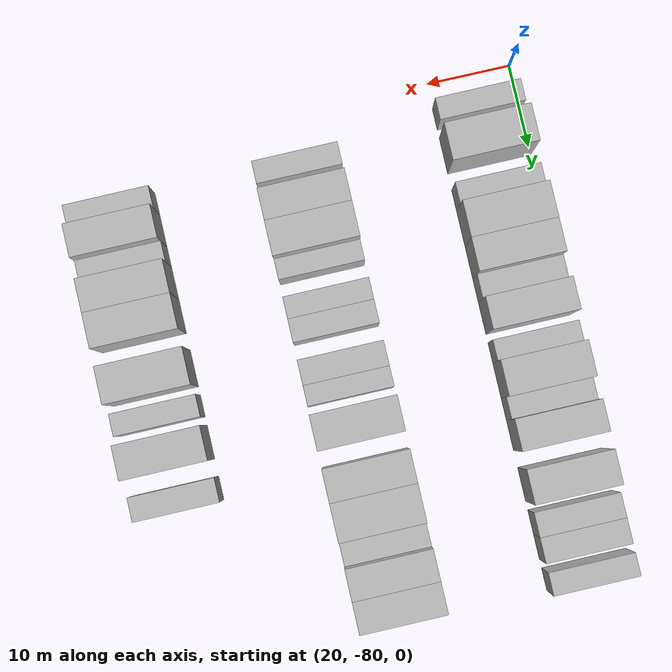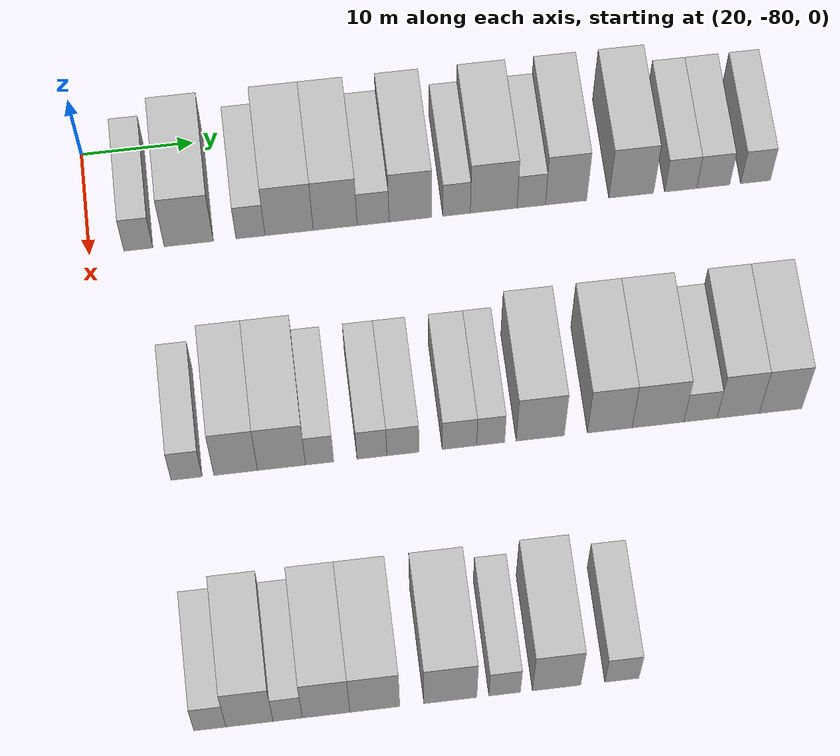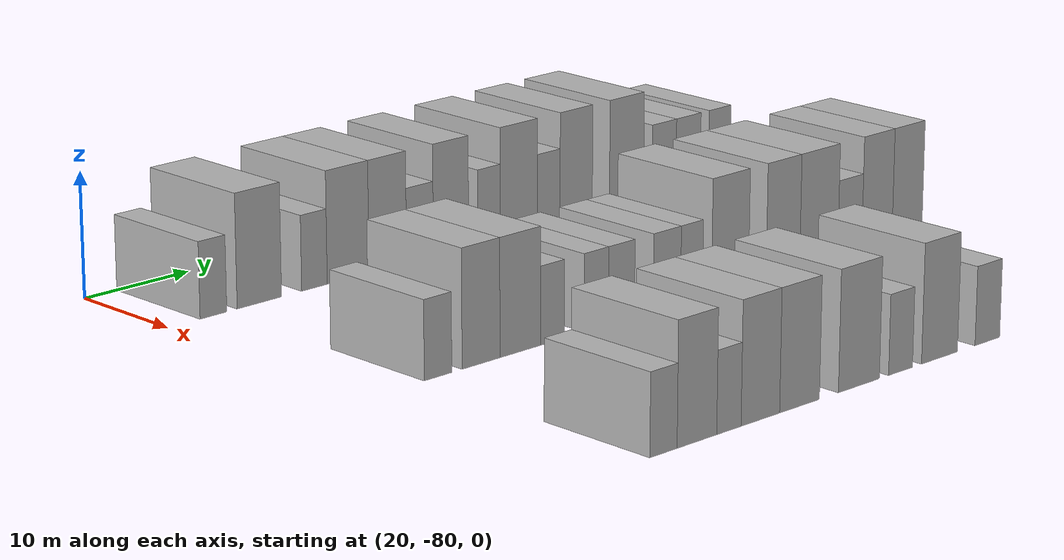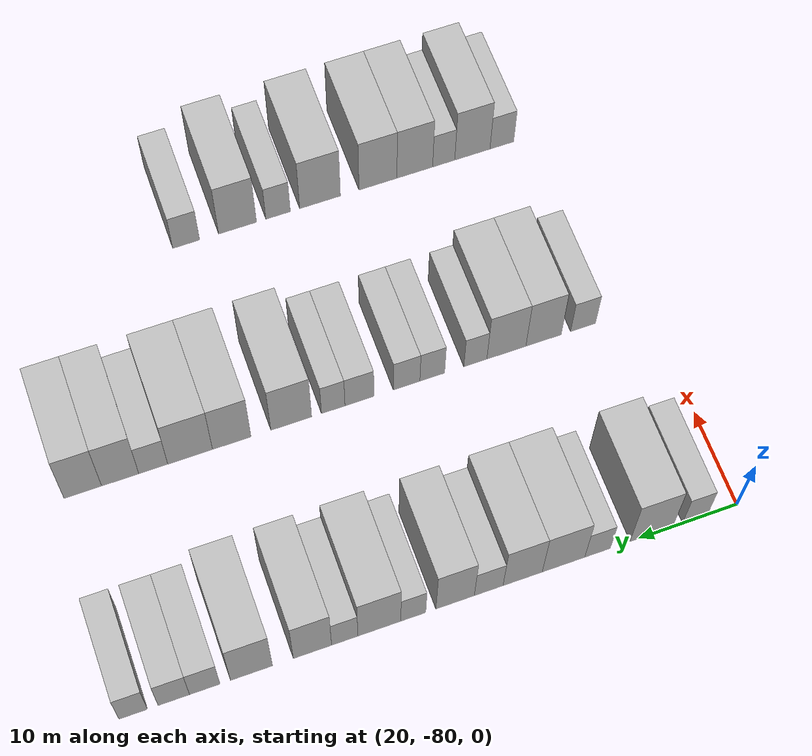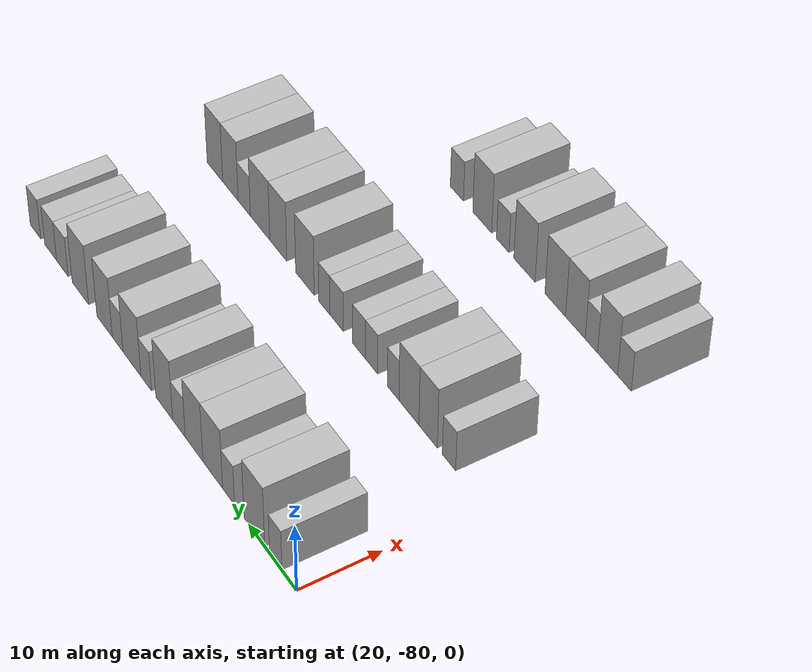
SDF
<sdf version="1.6">
 <world name="default">
  <model name="building_69">
   <static>1</static>
   <pose>25.0000 -75.6935 0 0.000000 0.000000 0.000000</pose>
   <link name="link">
    <pose>0 0 3.00 0 0 0</pose>
    <collision name="collision"><geometry><box><size>10.0000 2.5548 6.0000</size></box></geometry></collision>
    <visual name="visual">
     <cast_shadows>0</cast_shadows>
     <geometry><box><size>10.0000 2.5548 6.0000</size></box></geometry>
     <material>
      <script>
       <uri>model://HANNAS_wall/materials/scripts</uri>
       <uri>model://HANNAS_wall/materials/textures</uri>
       <name>vrc/HANNAS_wall</name>
      </script>
     </material>
    </visual>
   </link>
  </model>
  <model name="building_70">
   <static>1</static>
   <pose>25.0000 -71.2420 0 0.000000 0.000000 0.000000</pose>
   <link name="link">
    <pose>0 0 4.50 0 0 0</pose>
    <collision name="collision"><geometry><box><size>10.0000 4.3483 9.0000</size></box></geometry></collision>
    <visual name="visual">
     <cast_shadows>0</cast_shadows>
     <geometry><box><size>10.0000 4.3483 9.0000</size></box></geometry>
     <material>
      <script>
       <uri>model://HANNAS_wall/materials/scripts</uri>
       <uri>model://HANNAS_wall/materials/textures</uri>
       <name>vrc/HANNAS_wall</name>
      </script>
     </material>
    </visual>
   </link>
  </model>
  <model name="building_71">
   <static>1</static>
   <pose>25.0000 -65.7825 0 0.000000 0.000000 0.000000</pose>
   <link name="link">
    <pose>0 0 3.00 0 0 0</pose>
    <collision name="collision"><geometry><box><size>10.0000 2.5708 6.0000</size></box></geometry></collision>
    <visual name="visual">
     <cast_shadows>0</cast_shadows>
     <geometry><box><size>10.0000 2.5708 6.0000</size></box></geometry>
     <material>
      <script>
       <uri>model://HANNAS_wall/materials/scripts</uri>
       <uri>model://HANNAS_wall/materials/textures</uri>
       <name>vrc/HANNAS_wall</name>
      </script>
     </material>
    </visual>
   </link>
  </model>
  <model name="building_72">
   <static>1</static>
   <pose>25.0000 -62.3604 0 0.000000 0.000000 0.000000</pose>
   <link name="link">
    <pose>0 0 4.50 0 0 0</pose>
    <collision name="collision"><geometry><box><size>10.0000 4.2733 9.0000</size></box></geometry></collision>
    <visual name="visual">
     <cast_shadows>0</cast_shadows>
     <geometry><box><size>10.0000 4.2733 9.0000</size></box></geometry>
     <material>
      <script>
       <uri>model://HANNAS_wall/materials/scripts</uri>
       <uri>model://HANNAS_wall/materials/textures</uri>
       <name>vrc/HANNAS_wall</name>
      </script>
     </material>
    </visual>
   </link>
  </model>
  <model name="building_73">
   <static>1</static>
   <pose>25.0000 -58.2709 0 0.000000 0.000000 0.000000</pose>
   <link name="link">
    <pose>0 0 4.50 0 0 0</pose>
    <collision name="collision"><geometry><box><size>10.0000 3.9057 9.0000</size></box></geometry></collision>
    <visual name="visual">
     <cast_shadows>0</cast_shadows>
     <geometry><box><size>10.0000 3.9057 9.0000</size></box></geometry>
     <material>
      <script>
       <uri>model://HANNAS_wall/materials/scripts</uri>
       <uri>model://HANNAS_wall/materials/textures</uri>
       <name>vrc/HANNAS_wall</name>
      </script>
     </material>
    </visual>
   </link>
  </model>
  <model name="building_74">
   <static>1</static>
   <pose>25.0000 -54.8946 0 0.000000 0.000000 0.000000</pose>
   <link name="link">
    <pose>0 0 3.00 0 0 0</pose>
    <collision name="collision"><geometry><box><size>10.0000 2.8469 6.0000</size></box></geometry></collision>
    <visual name="visual">
     <cast_shadows>0</cast_shadows>
     <geometry><box><size>10.0000 2.8469 6.0000</size></box></geometry>
     <material>
      <script>
       <uri>model://HANNAS_wall/materials/scripts</uri>
       <uri>model://HANNAS_wall/materials/textures</uri>
       <name>vrc/HANNAS_wall</name>
      </script>
     </material>
    </visual>
   </link>
  </model>
  <model name="building_75">
   <static>1</static>
   <pose>25.0000 -51.5770 0 0.000000 0.000000 0.000000</pose>
   <link name="link">
    <pose>0 0 4.50 0 0 0</pose>
    <collision name="collision"><geometry><box><size>10.0000 3.7884 9.0000</size></box></geometry></collision>
    <visual name="visual">
     <cast_shadows>0</cast_shadows>
     <geometry><box><size>10.0000 3.7884 9.0000</size></box></geometry>
     <material>
      <script>
       <uri>model://HANNAS_wall/materials/scripts</uri>
       <uri>model://HANNAS_wall/materials/textures</uri>
       <name>vrc/HANNAS_wall</name>
      </script>
     </material>
    </visual>
   </link>
  </model>
  <model name="building_76">
   <static>1</static>
   <pose>25.0000 -47.4578 0 0.000000 0.000000 0.000000</pose>
   <link name="link">
    <pose>0 0 3.00 0 0 0</pose>
    <collision name="collision"><geometry><box><size>10.0000 2.4500 6.0000</size></box></geometry></collision>
    <visual name="visual">
     <cast_shadows>0</cast_shadows>
     <geometry><box><size>10.0000 2.4500 6.0000</size></box></geometry>
     <material>
      <script>
       <uri>model://HANNAS_wall/materials/scripts</uri>
       <uri>model://HANNAS_wall/materials/textures</uri>
       <name>vrc/HANNAS_wall</name>
      </script>
     </material>
    </visual>
   </link>
  </model>
  <model name="building_77">
   <static>1</static>
   <pose>25.0000 -44.1462 0 0.000000 0.000000 0.000000</pose>
   <link name="link">
    <pose>0 0 4.50 0 0 0</pose>
    <collision name="collision"><geometry><box><size>10.0000 4.1734 9.0000</size></box></geometry></collision>
    <visual name="visual">
     <cast_shadows>0</cast_shadows>
     <geometry><box><size>10.0000 4.1734 9.0000</size></box></geometry>
     <material>
      <script>
       <uri>model://HANNAS_wall/materials/scripts</uri>
       <uri>model://HANNAS_wall/materials/textures</uri>
       <name>vrc/HANNAS_wall</name>
      </script>
     </material>
    </visual>
   </link>
  </model>
  <model name="building_78">
   <static>1</static>
   <pose>25.0000 -40.7878 0 0.000000 0.000000 0.000000</pose>
   <link name="link">
    <pose>0 0 3.00 0 0 0</pose>
    <collision name="collision"><geometry><box><size>10.0000 2.5435 6.0000</size></box></geometry></collision>
    <visual name="visual">
     <cast_shadows>0</cast_shadows>
     <geometry><box><size>10.0000 2.5435 6.0000</size></box></geometry>
     <material>
      <script>
       <uri>model://HANNAS_wall/materials/scripts</uri>
       <uri>model://HANNAS_wall/materials/textures</uri>
       <name>vrc/HANNAS_wall</name>
      </script>
     </material>
    </visual>
   </link>
  </model>
  <model name="building_79">
   <static>1</static>
   <pose>25.0000 -37.6702 0 0.000000 0.000000 0.000000</pose>
   <link name="link">
    <pose>0 0 4.50 0 0 0</pose>
    <collision name="collision"><geometry><box><size>10.0000 3.6915 9.0000</size></box></geometry></collision>
    <visual name="visual">
     <cast_shadows>0</cast_shadows>
     <geometry><box><size>10.0000 3.6915 9.0000</size></box></geometry>
     <material>
      <script>
       <uri>model://HANNAS_wall/materials/scripts</uri>
       <uri>model://HANNAS_wall/materials/textures</uri>
       <name>vrc/HANNAS_wall</name>
      </script>
     </material>
    </visual>
   </link>
  </model>
  <model name="building_80">
   <static>1</static>
   <pose>25.0000 -31.8176 0 0.000000 0.000000 0.000000</pose>
   <link name="link">
    <pose>0 0 4.50 0 0 0</pose>
    <collision name="collision"><geometry><box><size>10.0000 4.0138 9.0000</size></box></geometry></collision>
    <visual name="visual">
     <cast_shadows>0</cast_shadows>
     <geometry><box><size>10.0000 4.0138 9.0000</size></box></geometry>
     <material>
      <script>
       <uri>model://HANNAS_wall/materials/scripts</uri>
       <uri>model://HANNAS_wall/materials/textures</uri>
       <name>vrc/HANNAS_wall</name>
      </script>
     </material>
    </visual>
   </link>
  </model>
  <model name="building_81">
   <static>1</static>
   <pose>25.0000 -27.3669 0 0.000000 0.000000 0.000000</pose>
   <link name="link">
    <pose>0 0 3.00 0 0 0</pose>
    <collision name="collision"><geometry><box><size>10.0000 2.8876 6.0000</size></box></geometry></collision>
    <visual name="visual">
     <cast_shadows>0</cast_shadows>
     <geometry><box><size>10.0000 2.8876 6.0000</size></box></geometry>
     <material>
      <script>
       <uri>model://HANNAS_wall/materials/scripts</uri>
       <uri>model://HANNAS_wall/materials/textures</uri>
       <name>vrc/HANNAS_wall</name>
      </script>
     </material>
    </visual>
   </link>
  </model>
  <model name="building_82">
   <static>1</static>
   <pose>25.0000 -24.4409 0 0.000000 0.000000 0.000000</pose>
   <link name="link">
    <pose>0 0 3.00 0 0 0</pose>
    <collision name="collision"><geometry><box><size>10.0000 2.9643 6.0000</size></box></geometry></collision>
    <visual name="visual">
     <cast_shadows>0</cast_shadows>
     <geometry><box><size>10.0000 2.9643 6.0000</size></box></geometry>
     <material>
      <script>
       <uri>model://HANNAS_wall/materials/scripts</uri>
       <uri>model://HANNAS_wall/materials/textures</uri>
       <name>vrc/HANNAS_wall</name>
      </script>
     </material>
    </visual>
   </link>
  </model>
  <model name="building_83">
   <static>1</static>
   <pose>25.0000 -20.6208 0 0.000000 0.000000 0.000000</pose>
   <link name="link">
    <pose>0 0 3.00 0 0 0</pose>
    <collision name="collision"><geometry><box><size>10.0000 2.6760 6.0000</size></box></geometry></collision>
    <visual name="visual">
     <cast_shadows>0</cast_shadows>
     <geometry><box><size>10.0000 2.6760 6.0000</size></box></geometry>
     <material>
      <script>
       <uri>model://HANNAS_wall/materials/scripts</uri>
       <uri>model://HANNAS_wall/materials/textures</uri>
       <name>vrc/HANNAS_wall</name>
      </script>
     </material>
    </visual>
   </link>
  </model>
  <model name="building_262">
   <static>1</static>
   <pose>47.0000 -73.2984 0 0.000000 0.000000 0.000000</pose>
   <link name="link">
    <pose>0 0 3.00 0 0 0</pose>
    <collision name="collision"><geometry><box><size>10.0000 2.6412 6.0000</size></box></geometry></collision>
    <visual name="visual">
     <cast_shadows>0</cast_shadows>
     <geometry><box><size>10.0000 2.6412 6.0000</size></box></geometry>
     <material>
      <script>
       <uri>model://HANNAS_wall/materials/scripts</uri>
       <uri>model://HANNAS_wall/materials/textures</uri>
       <name>vrc/HANNAS_wall</name>
      </script>
     </material>
    </visual>
   </link>
  </model>
  <model name="building_263">
   <static>1</static>
   <pose>47.0000 -69.1170 0 0.000000 0.000000 0.000000</pose>
   <link name="link">
    <pose>0 0 4.50 0 0 0</pose>
    <collision name="collision"><geometry><box><size>10.0000 3.7216 9.0000</size></box></geometry></collision>
    <visual name="visual">
     <cast_shadows>0</cast_shadows>
     <geometry><box><size>10.0000 3.7216 9.0000</size></box></geometry>
     <material>
      <script>
       <uri>model://HANNAS_wall/materials/scripts</uri>
       <uri>model://HANNAS_wall/materials/textures</uri>
       <name>vrc/HANNAS_wall</name>
      </script>
     </material>
    </visual>
   </link>
  </model>
  <model name="building_264">
   <static>1</static>
   <pose>47.0000 -65.2083 0 0.000000 0.000000 0.000000</pose>
   <link name="link">
    <pose>0 0 4.50 0 0 0</pose>
    <collision name="collision"><geometry><box><size>10.0000 4.0959 9.0000</size></box></geometry></collision>
    <visual name="visual">
     <cast_shadows>0</cast_shadows>
     <geometry><box><size>10.0000 4.0959 9.0000</size></box></geometry>
     <material>
      <script>
       <uri>model://HANNAS_wall/materials/scripts</uri>
       <uri>model://HANNAS_wall/materials/textures</uri>
       <name>vrc/HANNAS_wall</name>
      </script>
     </material>
    </visual>
   </link>
  </model>
  <model name="building_265">
   <static>1</static>
   <pose>47.0000 -61.9571 0 0.000000 0.000000 0.000000</pose>
   <link name="link">
    <pose>0 0 3.00 0 0 0</pose>
    <collision name="collision"><geometry><box><size>10.0000 2.4065 6.0000</size></box></geometry></collision>
    <visual name="visual">
     <cast_shadows>0</cast_shadows>
     <geometry><box><size>10.0000 2.4065 6.0000</size></box></geometry>
     <material>
      <script>
       <uri>model://HANNAS_wall/materials/scripts</uri>
       <uri>model://HANNAS_wall/materials/textures</uri>
       <name>vrc/HANNAS_wall</name>
      </script>
     </material>
    </visual>
   </link>
  </model>
  <model name="building_266">
   <static>1</static>
   <pose>47.0000 -57.4736 0 0.000000 0.000000 0.000000</pose>
   <link name="link">
    <pose>0 0 3.00 0 0 0</pose>
    <collision name="collision"><geometry><box><size>10.0000 2.5605 6.0000</size></box></geometry></collision>
    <visual name="visual">
     <cast_shadows>0</cast_shadows>
     <geometry><box><size>10.0000 2.5605 6.0000</size></box></geometry>
     <material>
      <script>
       <uri>model://HANNAS_wall/materials/scripts</uri>
       <uri>model://HANNAS_wall/materials/textures</uri>
       <name>vrc/HANNAS_wall</name>
      </script>
     </material>
    </visual>
   </link>
  </model>
  <model name="building_267">
   <static>1</static>
   <pose>47.0000 -54.8199 0 0.000000 0.000000 0.000000</pose>
   <link name="link">
    <pose>0 0 3.00 0 0 0</pose>
    <collision name="collision"><geometry><box><size>10.0000 2.7468 6.0000</size></box></geometry></collision>
    <visual name="visual">
     <cast_shadows>0</cast_shadows>
     <geometry><box><size>10.0000 2.7468 6.0000</size></box></geometry>
     <material>
      <script>
       <uri>model://HANNAS_wall/materials/scripts</uri>
       <uri>model://HANNAS_wall/materials/textures</uri>
       <name>vrc/HANNAS_wall</name>
      </script>
     </material>
    </visual>
   </link>
  </model>
  <model name="building_268">
   <static>1</static>
   <pose>47.0000 -49.9681 0 0.000000 0.000000 0.000000</pose>
   <link name="link">
    <pose>0 0 3.00 0 0 0</pose>
    <collision name="collision"><geometry><box><size>10.0000 2.9569 6.0000</size></box></geometry></collision>
    <visual name="visual">
     <cast_shadows>0</cast_shadows>
     <geometry><box><size>10.0000 2.9569 6.0000</size></box></geometry>
     <material>
      <script>
       <uri>model://HANNAS_wall/materials/scripts</uri>
       <uri>model://HANNAS_wall/materials/textures</uri>
       <name>vrc/HANNAS_wall</name>
      </script>
     </material>
    </visual>
   </link>
  </model>
  <model name="building_269">
   <static>1</static>
   <pose>47.0000 -47.2884 0 0.000000 0.000000 0.000000</pose>
   <link name="link">
    <pose>0 0 3.00 0 0 0</pose>
    <collision name="collision"><geometry><box><size>10.0000 2.4025 6.0000</size></box></geometry></collision>
    <visual name="visual">
     <cast_shadows>0</cast_shadows>
     <geometry><box><size>10.0000 2.4025 6.0000</size></box></geometry>
     <material>
      <script>
       <uri>model://HANNAS_wall/materials/scripts</uri>
       <uri>model://HANNAS_wall/materials/textures</uri>
       <name>vrc/HANNAS_wall</name>
      </script>
     </material>
    </visual>
   </link>
  </model>
  <model name="building_270">
   <static>1</static>
   <pose>47.0000 -43.0171 0 0.000000 0.000000 0.000000</pose>
   <link name="link">
    <pose>0 0 4.50 0 0 0</pose>
    <collision name="collision"><geometry><box><size>10.0000 4.1401 9.0000</size></box></geometry></collision>
    <visual name="visual">
     <cast_shadows>0</cast_shadows>
     <geometry><box><size>10.0000 4.1401 9.0000</size></box></geometry>
     <material>
      <script>
       <uri>model://HANNAS_wall/materials/scripts</uri>
       <uri>model://HANNAS_wall/materials/textures</uri>
       <name>vrc/HANNAS_wall</name>
      </script>
     </material>
    </visual>
   </link>
  </model>
  <model name="building_271">
   <static>1</static>
   <pose>47.0000 -37.0132 0 0.000000 0.000000 0.000000</pose>
   <link name="link">
    <pose>0 0 4.50 0 0 0</pose>
    <collision name="collision"><geometry><box><size>10.0000 3.8678 9.0000</size></box></geometry></collision>
    <visual name="visual">
     <cast_shadows>0</cast_shadows>
     <geometry><box><size>10.0000 3.8678 9.0000</size></box></geometry>
     <material>
      <script>
       <uri>model://HANNAS_wall/materials/scripts</uri>
       <uri>model://HANNAS_wall/materials/textures</uri>
       <name>vrc/HANNAS_wall</name>
      </script>
     </material>
    </visual>
   </link>
  </model>
  <model name="building_272">
   <static>1</static>
   <pose>47.0000 -32.8406 0 0.000000 0.000000 0.000000</pose>
   <link name="link">
    <pose>0 0 4.50 0 0 0</pose>
    <collision name="collision"><geometry><box><size>10.0000 4.4773 9.0000</size></box></geometry></collision>
    <visual name="visual">
     <cast_shadows>0</cast_shadows>
     <geometry><box><size>10.0000 4.4773 9.0000</size></box></geometry>
     <material>
      <script>
       <uri>model://HANNAS_wall/materials/scripts</uri>
       <uri>model://HANNAS_wall/materials/textures</uri>
       <name>vrc/HANNAS_wall</name>
      </script>
     </material>
    </visual>
   </link>
  </model>
  <model name="building_273">
   <static>1</static>
   <pose>47.0000 -29.1661 0 0.000000 0.000000 0.000000</pose>
   <link name="link">
    <pose>0 0 3.00 0 0 0</pose>
    <collision name="collision"><geometry><box><size>10.0000 2.8719 6.0000</size></box></geometry></collision>
    <visual name="visual">
     <cast_shadows>0</cast_shadows>
     <geometry><box><size>10.0000 2.8719 6.0000</size></box></geometry>
     <material>
      <script>
       <uri>model://HANNAS_wall/materials/scripts</uri>
       <uri>model://HANNAS_wall/materials/textures</uri>
       <name>vrc/HANNAS_wall</name>
      </script>
     </material>
    </visual>
   </link>
  </model>
  <model name="building_274">
   <static>1</static>
   <pose>47.0000 -25.8925 0 0.000000 0.000000 0.000000</pose>
   <link name="link">
    <pose>0 0 4.50 0 0 0</pose>
    <collision name="collision"><geometry><box><size>10.0000 3.6751 9.0000</size></box></geometry></collision>
    <visual name="visual">
     <cast_shadows>0</cast_shadows>
     <geometry><box><size>10.0000 3.6751 9.0000</size></box></geometry>
     <material>
      <script>
       <uri>model://HANNAS_wall/materials/scripts</uri>
       <uri>model://HANNAS_wall/materials/textures</uri>
       <name>vrc/HANNAS_wall</name>
      </script>
     </material>
    </visual>
   </link>
  </model>
  <model name="building_275">
   <static>1</static>
   <pose>47.0000 -22.2074 0 0.000000 0.000000 0.000000</pose>
   <link name="link">
    <pose>0 0 4.50 0 0 0</pose>
    <collision name="collision"><geometry><box><size>10.0000 3.6951 9.0000</size></box></geometry></collision>
    <visual name="visual">
     <cast_shadows>0</cast_shadows>
     <geometry><box><size>10.0000 3.6951 9.0000</size></box></geometry>
     <material>
      <script>
       <uri>model://HANNAS_wall/materials/scripts</uri>
       <uri>model://HANNAS_wall/materials/textures</uri>
       <name>vrc/HANNAS_wall</name>
      </script>
     </material>
    </visual>
   </link>
  </model>
  <model name="building_451">
   <static>1</static>
   <pose>69.0000 -73.2525 0 0.000000 0.000000 0.000000</pose>
   <link name="link">
    <pose>0 0 3.00 0 0 0</pose>
    <collision name="collision"><geometry><box><size>10.0000 2.6122 6.0000</size></box></geometry></collision>
    <visual name="visual">
     <cast_shadows>0</cast_shadows>
     <geometry><box><size>10.0000 2.6122 6.0000</size></box></geometry>
     <material>
      <script>
       <uri>model://HANNAS_wall/materials/scripts</uri>
       <uri>model://HANNAS_wall/materials/textures</uri>
       <name>vrc/HANNAS_wall</name>
      </script>
     </material>
    </visual>
   </link>
  </model>
  <model name="building_452">
   <static>1</static>
   <pose>69.0000 -70.0144 0 0.000000 0.000000 0.000000</pose>
   <link name="link">
    <pose>0 0 4.50 0 0 0</pose>
    <collision name="collision"><geometry><box><size>10.0000 3.8640 9.0000</size></box></geometry></collision>
    <visual name="visual">
     <cast_shadows>0</cast_shadows>
     <geometry><box><size>10.0000 3.8640 9.0000</size></box></geometry>
     <material>
      <script>
       <uri>model://HANNAS_wall/materials/scripts</uri>
       <uri>model://HANNAS_wall/materials/textures</uri>
       <name>vrc/HANNAS_wall</name>
      </script>
     </material>
    </visual>
   </link>
  </model>
  <model name="building_453">
   <static>1</static>
   <pose>69.0000 -66.8750 0 0.000000 0.000000 0.000000</pose>
   <link name="link">
    <pose>0 0 3.00 0 0 0</pose>
    <collision name="collision"><geometry><box><size>10.0000 2.4147 6.0000</size></box></geometry></collision>
    <visual name="visual">
     <cast_shadows>0</cast_shadows>
     <geometry><box><size>10.0000 2.4147 6.0000</size></box></geometry>
     <material>
      <script>
       <uri>model://HANNAS_wall/materials/scripts</uri>
       <uri>model://HANNAS_wall/materials/textures</uri>
       <name>vrc/HANNAS_wall</name>
      </script>
     </material>
    </visual>
   </link>
  </model>
  <model name="building_454">
   <static>1</static>
   <pose>69.0000 -63.7212 0 0.000000 0.000000 0.000000</pose>
   <link name="link">
    <pose>0 0 4.50 0 0 0</pose>
    <collision name="collision"><geometry><box><size>10.0000 3.8931 9.0000</size></box></geometry></collision>
    <visual name="visual">
     <cast_shadows>0</cast_shadows>
     <geometry><box><size>10.0000 3.8931 9.0000</size></box></geometry>
     <material>
      <script>
       <uri>model://HANNAS_wall/materials/scripts</uri>
       <uri>model://HANNAS_wall/materials/textures</uri>
       <name>vrc/HANNAS_wall</name>
      </script>
     </material>
    </visual>
   </link>
  </model>
  <model name="building_455">
   <static>1</static>
   <pose>69.0000 -59.7230 0 0.000000 0.000000 0.000000</pose>
   <link name="link">
    <pose>0 0 4.50 0 0 0</pose>
    <collision name="collision"><geometry><box><size>10.0000 4.1031 9.0000</size></box></geometry></collision>
    <visual name="visual">
     <cast_shadows>0</cast_shadows>
     <geometry><box><size>10.0000 4.1031 9.0000</size></box></geometry>
     <material>
      <script>
       <uri>model://HANNAS_wall/materials/scripts</uri>
       <uri>model://HANNAS_wall/materials/textures</uri>
       <name>vrc/HANNAS_wall</name>
      </script>
     </material>
    </visual>
   </link>
  </model>
  <model name="building_456">
   <static>1</static>
   <pose>69.0000 -53.4887 0 0.000000 0.000000 0.000000</pose>
   <link name="link">
    <pose>0 0 4.50 0 0 0</pose>
    <collision name="collision"><geometry><box><size>10.0000 4.3655 9.0000</size></box></geometry></collision>
    <visual name="visual">
     <cast_shadows>0</cast_shadows>
     <geometry><box><size>10.0000 4.3655 9.0000</size></box></geometry>
     <material>
      <script>
       <uri>model://HANNAS_wall/materials/scripts</uri>
       <uri>model://HANNAS_wall/materials/textures</uri>
       <name>vrc/HANNAS_wall</name>
      </script>
     </material>
    </visual>
   </link>
  </model>
  <model name="building_457">
   <static>1</static>
   <pose>69.0000 -49.0037 0 0.000000 0.000000 0.000000</pose>
   <link name="link">
    <pose>0 0 3.00 0 0 0</pose>
    <collision name="collision"><geometry><box><size>10.0000 2.6044 6.0000</size></box></geometry></collision>
    <visual name="visual">
     <cast_shadows>0</cast_shadows>
     <geometry><box><size>10.0000 2.6044 6.0000</size></box></geometry>
     <material>
      <script>
       <uri>model://HANNAS_wall/materials/scripts</uri>
       <uri>model://HANNAS_wall/materials/textures</uri>
       <name>vrc/HANNAS_wall</name>
      </script>
     </material>
    </visual>
   </link>
  </model>
  <model name="building_458">
   <static>1</static>
   <pose>69.0000 -44.6979 0 0.000000 0.000000 0.000000</pose>
   <link name="link">
    <pose>0 0 4.50 0 0 0</pose>
    <collision name="collision"><geometry><box><size>10.0000 4.0073 9.0000</size></box></geometry></collision>
    <visual name="visual">
     <cast_shadows>0</cast_shadows>
     <geometry><box><size>10.0000 4.0073 9.0000</size></box></geometry>
     <material>
      <script>
       <uri>model://HANNAS_wall/materials/scripts</uri>
       <uri>model://HANNAS_wall/materials/textures</uri>
       <name>vrc/HANNAS_wall</name>
      </script>
     </material>
    </visual>
   </link>
  </model>
  <model name="building_459">
   <static>1</static>
   <pose>69.0000 -39.2803 0 0.000000 0.000000 0.000000</pose>
   <link name="link">
    <pose>0 0 3.00 0 0 0</pose>
    <collision name="collision"><geometry><box><size>10.0000 2.8277 6.0000</size></box></geometry></collision>
    <visual name="visual">
     <cast_shadows>0</cast_shadows>
     <geometry><box><size>10.0000 2.8277 6.0000</size></box></geometry>
     <material>
      <script>
       <uri>model://HANNAS_wall/materials/scripts</uri>
       <uri>model://HANNAS_wall/materials/textures</uri>
       <name>vrc/HANNAS_wall</name>
      </script>
     </material>
    </visual>
   </link>
  </model>
 </world>
</sdf>
